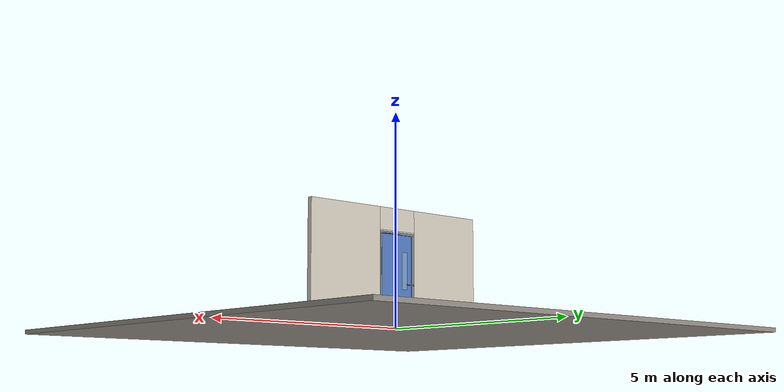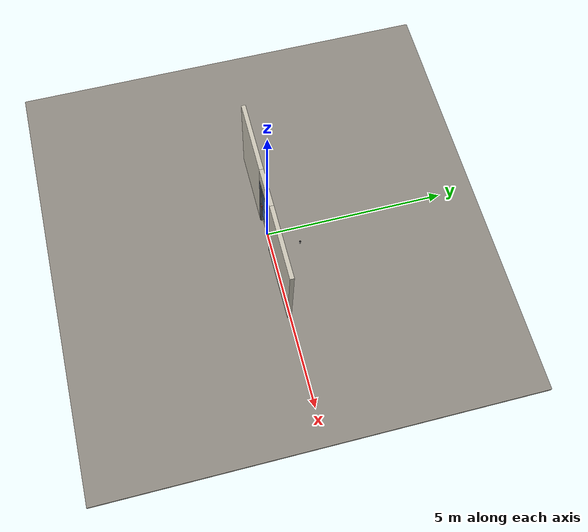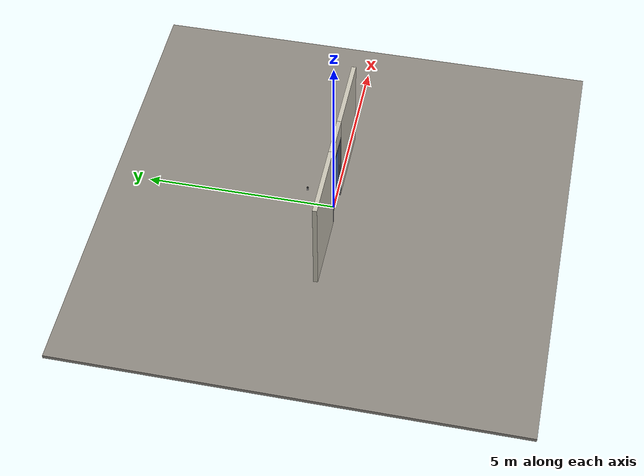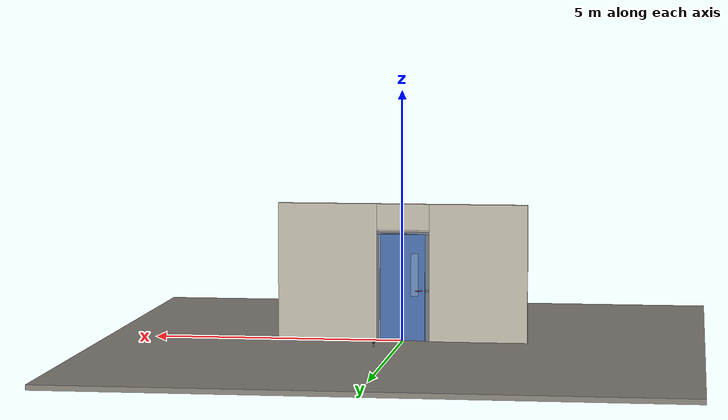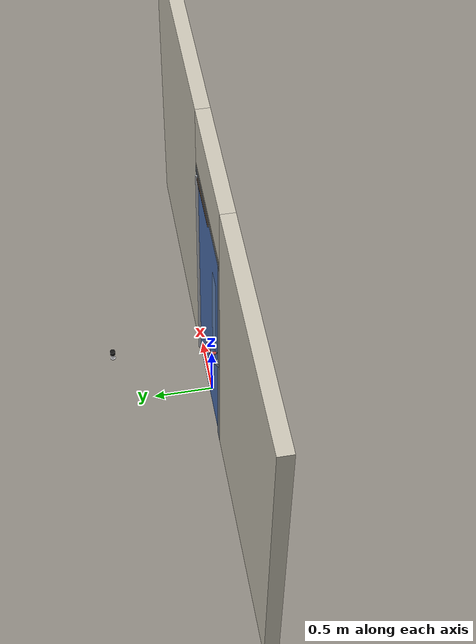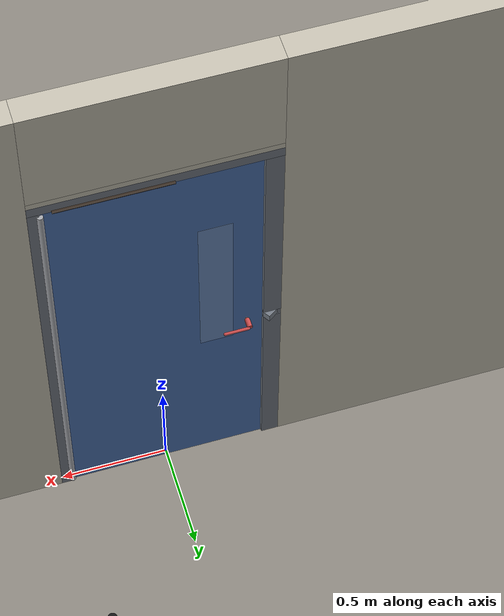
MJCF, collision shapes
<?xml version="1.0" ?>
<mujoco model="db0492_swing_single_full">
  <compiler angle="radian" meshdir="../../hardware" texturedir="../../textures" autolimits="true" inertiafromgeom="false"/>
  <option timestep="0.002" integrator="implicitfast" cone="elliptic" impratio="10" noslip_iterations="3">
    <flag multiccd="enable"/>
  </option>
  <size memory="16M"/>
  <default>
    <geom condim="4" solref="0.005 1" solimp="0.95 0.99 0.001"/>
    <joint solreflimit="0.005 1" solimplimit="0.95 0.99 0.001"/>
    <tendon solreflimit="0.005 1"/>
    <equality solref="0.002 1"/>
  </default>
  <visual>
    <headlight ambient="0.4 0.4 0.4" diffuse="0.7 0.7 0.7" specular="0.2 0.2 0.2"/>
    <quality shadowsize="4096"/>
    <map znear="0.01" zfar="60"/>
  </visual>
  <asset>
    <mesh name="lever_57205841c3" file="lever_57205841c3.obj"/>
    <material name="mat_floor" rgba="0.55 0.53 0.5 1" specular="0.2" shininess="0.15" reflectance="0"/>
    <material name="mat_wall" rgba="0.78 0.76 0.7 1" specular="0.2" shininess="0.1" reflectance="0"/>
    <material name="mat_leaf" rgba="0.3 0.45 0.7 1" specular="0.23" shininess="0.55" reflectance="0.02"/>
    <material name="mat_glass" rgba="0.85 0.92 0.95 0.25" specular="0.2" shininess="0.95" reflectance="0.1"/>
    <material name="mat_hinge" rgba="0.65 0.66 0.68 1" specular="0.74" shininess="0.5" reflectance="0.36"/>
    <material name="mat_op_black_matte_metal" rgba="0.05 0.05 0.05 1" specular="0.38" shininess="0.3" reflectance="0.12"/>
    <material name="mat_trim" rgba="0.85 0.66 0.3 1" specular="0.8" shininess="0.75" reflectance="0.4"/>
    <material name="mat_bolt" rgba="0.85 0.66 0.3 1" specular="0.8" shininess="0.75" reflectance="0.4"/>
    <material name="mat_frame" rgba="0.45 0.48 0.52 1" specular="0.32" shininess="0.6" reflectance="0.08"/>
    <material name="mat_seal" rgba="0.1 0.1 0.1 1" specular="0.2" shininess="0.1" reflectance="0"/>
    <material name="mat_closer" rgba="0.22 0.17 0.13 1" specular="0.8" shininess="0.6" reflectance="0.4"/>
    <material name="mat_kick" rgba="0.75 0.76 0.77 1" specular="0.8" shininess="0.65" reflectance="0.4"/>
    <material name="mat_bumper_stop" rgba="0.08 0.08 0.08 1" specular="0.2" shininess="0.1" reflectance="0"/>
    <material name="mat_stop_base" rgba="0.9 0.9 0.92 1" specular="0.8" shininess="0.9" reflectance="0.4"/>
    <texture name="skybox" type="skybox" builtin="gradient" rgb1="0.6 0.7 0.85" rgb2="0.9 0.92 0.95" width="256" height="256"/>
  </asset>
  <worldbody>
    <light name="sun" pos="1.5 -2.5 4" dir="-0.3 0.5 -0.8" directional="true" diffuse="0.8 0.8 0.8" specular="0.3 0.3 0.3" castshadow="true"/>
    <light name="fill" pos="-1.5 2.5 3" dir="0.3 -0.5 -0.7" directional="true" diffuse="0.35 0.35 0.4" castshadow="false"/>
    <camera name="robot_view" pos="0 -2.666313 1.812087" xyaxes="1 0 0 0 0.26963 0.962964" fovy="52"/>
    <camera name="far_view" pos="0 2.609312 1.812087" xyaxes="-1 0 0 0 -0.26963 0.962964" fovy="52"/>
    <camera name="iso" pos="-2.004737 -2.244263 2.234138" xyaxes="0.741536 -0.670913 0 0.242917 0.268487 0.932151" fovy="46"/>
    <camera name="detail_handle" pos="-0.1105 -0.877 1.296" xyaxes="0.97561 0.219512 0 -0.070934 0.315262 0.94635" fovy="38"/>
    <geom name="floor" type="box" size="6 6 0.05" pos="0 0 -0.05" material="mat_floor" group="0" contype="1" conaffinity="1" friction="0.8 0.005 0.0001" density="2400"/>
    <geom name="wall_left" type="box" size="0.97975 0.0575 1.3735" pos="-1.52025 -0.0285 1.3735" material="mat_wall" group="0" contype="1" conaffinity="1" friction="0.6 0.005 0.0001" density="800"/>
    <geom name="wall_right" type="box" size="0.99475 0.0575 1.3735" pos="1.50525 -0.0285 1.3735" material="mat_wall" group="0" contype="1" conaffinity="1" friction="0.6 0.005 0.0001" density="800"/>
    <geom name="wall_header" type="box" size="0.5255 0.0575 0.26" pos="-0.015 -0.0285 2.487" material="mat_wall" group="0" contype="1" conaffinity="1" friction="0.6 0.005 0.0001" density="800"/>
    <geom name="jamb_hinge" type="box" size="0.025 0.0575 1.0735" pos="0.4855 -0.0285 1.0735" material="mat_frame" group="0" contype="1" conaffinity="1" friction="0.6 0.005 0.0001" density="300"/>
    <geom name="strike_1016_wall_n" type="box" size="0.04 0.03825 0.0183" pos="-0.5005 -0.04775 1.016" material="mat_frame" group="0" contype="1" conaffinity="1" friction="0.6 0.005 0.0001" density="300"/>
    <geom name="strike_1016_wall_p" type="box" size="0.04 0.008 0.0183" pos="-0.5005 0.0175 1.016" material="mat_frame" group="0" contype="1" conaffinity="1" friction="0.6 0.005 0.0001" density="300"/>
    <geom name="strike_1016_ramp" type="box" size="0.04 0.018028 0.0183" pos="-0.503782 0.018312 1.016" quat="0.957092 0 0 0.289784" material="mat_frame" group="0" contype="1" conaffinity="1" friction="0.12 0.005 0.0001" density="300"/>
    <geom name="strike_1016_back" type="box" size="0.0285 0.0095 0.0183" pos="-0.512 0 1.016" material="mat_frame" group="0" contype="1" conaffinity="1" friction="0.6 0.005 0.0001" density="300"/>
    <geom name="jamb_strike_0" type="box" size="0.04 0.0575 0.49885" pos="-0.5005 -0.0285 0.49885" material="mat_frame" group="0" contype="1" conaffinity="1" friction="0.6 0.005 0.0001" density="300"/>
    <geom name="jamb_strike_1" type="box" size="0.04 0.0575 0.55635" pos="-0.5005 -0.0285 1.59065" material="mat_frame" group="0" contype="1" conaffinity="1" friction="0.6 0.005 0.0001" density="300"/>
    <geom name="jamb_head" type="box" size="0.5255 0.0575 0.025" pos="-0.015 -0.0285 2.172" material="mat_frame" group="0" contype="1" conaffinity="1" friction="0.6 0.005 0.0001" density="300"/>
    <geom name="head_stud" type="box" size="0.5255 0.0575 0.015" pos="-0.015 -0.0285 2.212" material="mat_wall" group="0" contype="1" conaffinity="1" friction="0.6 0.005 0.0001" density="500"/>
    <geom name="stop_hinge" type="box" size="0.0055 0.016 1.0735" pos="0.455 -0.0385 1.0735" material="mat_frame" group="0" contype="1" conaffinity="1" friction="0.6 0.005 0.0001" density="300"/>
    <geom name="stop_strike" type="box" size="0.0055 0.016 1.0735" pos="-0.455 -0.0385 1.0735" material="mat_frame" group="0" contype="1" conaffinity="1" friction="0.6 0.005 0.0001" density="300"/>
    <geom name="stop_head" type="box" size="0.4605 0.016 0.0055" pos="0 -0.0385 2.1415" material="mat_frame" group="0" contype="1" conaffinity="1" friction="0.6 0.005 0.0001" density="300"/>
    <geom name="seal_hinge" type="box" size="0.004 0.002 1.0735" pos="0.4575 -0.024 1.0735" material="mat_seal" group="1" contype="0" conaffinity="0" density="1100"/>
    <geom name="seal_strike" type="box" size="0.004 0.002 1.0735" pos="-0.4575 -0.024 1.0735" material="mat_seal" group="1" contype="0" conaffinity="0" density="1100"/>
    <geom name="seal_head" type="box" size="0.4405 0.002 0.008" pos="0 -0.024 2.135" material="mat_seal" group="1" contype="0" conaffinity="0" density="1100"/>
    <geom name="closer_concealed_slot" type="box" size="0.25 0.008 0.004" pos="0.1605 0.032 2.152" material="mat_closer" group="1" contype="0" conaffinity="0" density="2700"/>
    <geom name="door_stop_base" type="cylinder" size="0.022 0.003" pos="0.4735 0.8059 0.003" material="mat_stop_base" group="0" contype="1" conaffinity="1" friction="0.6 0.005 0.0001" density="7850"/>
    <geom name="door_stop_post" type="cylinder" size="0.012 0.0245" pos="0.4735 0.8059 0.0305" material="mat_stop_base" group="0" contype="1" conaffinity="1" friction="0.6 0.005 0.0001" density="7850"/>
    <geom name="door_stop_bumper" type="cylinder" size="0.022 0.02" pos="0.4735 0.8059 0.075" material="mat_bumper_stop" group="0" contype="1" conaffinity="1" friction="0.6 0.005 0.0001" density="1100"/>
    <site name="approach_point" pos="0 -1.5 0" quat="1 0 0 0" size="0.05" rgba="0.2 0.9 0.2 0.5" group="4"/>
    <site name="goal_point" pos="0 1.5 0" quat="1 0 0 0" size="0.05" rgba="0.2 0.9 0.2 0.5" group="4"/>
    <site name="door_plane_center" pos="0 0 1.0735" quat="1 0 0 0" size="0.02" rgba="0.2 0.9 0.2 0.5" group="4"/>
    <body name="leaf" pos="0.4605 0 0">
      <inertial pos="-0.429996 0.00069 1.025929" mass="50.223396" quat="0.499129 0.503174 -0.495354 0.502305" diaginertia="3.90240028 20.248075611 24.128854514"/>
      <joint name="leaf_hinge" type="hinge" axis="0 0 -1" pos="-0.003 0.029 0" limited="true" range="0 1.570796" solreflimit="0.02 1" damping="10.268966" frictionloss="1.418375" stiffness="13.057072" springref="-1.488848" armature="0.02"/>
      <geom name="leaf_slab" type="box" size="0.457 0.022 1.067" pos="-0.46 0 1.076" material="mat_leaf" group="0" contype="1" conaffinity="1" friction="0.4 0.005 0.0001" density="1"/>
      <geom name="leaf_glass_0" type="box" size="0.075 0.0228 0.4268" pos="-0.71146 0 1.33208" material="mat_glass" group="1" contype="0" conaffinity="0" density="1"/>
      <geom name="hinge_continuous" type="cylinder" size="0.0136 1.057" pos="-0.003 0.029 1.076" material="mat_hinge" group="1" contype="0" conaffinity="0" density="2700"/>
      <geom name="leaf_latch_bolt_faceplate" type="box" size="0.0006 0.014 0.0283" pos="-0.9164 0 1.016" material="mat_bolt" group="1" contype="0" conaffinity="0" density="8500"/>
      <geom name="kick_plate_n" type="box" size="0.427 0.0008 0.125" pos="-0.46 -0.0228 0.144" material="mat_kick" group="2" contype="0" conaffinity="0" density="7900"/>
      <site name="leaf_edge_mid" pos="-0.917 0 1.067" quat="1 0 0 0" size="0.02" rgba="0.2 0.9 0.2 0.5" group="4"/>
      <body name="leaf_handle" pos="-0.847 0 1.016">
        <inertial pos="0.018425 0 0" mass="0.806444" quat="0 0.707107 0.707107 0" diaginertia="0.001006485 0.002593405 0.00349528"/>
        <joint name="leaf_handle_hinge" type="hinge" axis="0 1 0" limited="true" range="0 0.87" damping="0.212417" frictionloss="0.042" stiffness="1" springref="-0.35" armature="0.01"/>
        <geom name="leaf_handle_spindle" type="cylinder" size="0.006 0.03" pos="0 0 0" quat="0.707107 -0.707107 0 0" material="mat_op_black_matte_metal" group="1" contype="0" conaffinity="0" density="7850"/>
        <geom name="leaf_handle_lever_n" type="mesh" mesh="lever_57205841c3" pos="0 -0.022 0" quat="0 0 -0.707107 0.707107" material="mat_op_black_matte_metal" group="1" contype="0" conaffinity="0" density="3000"/>
        <geom name="leaf_handle_lever_col_n" type="capsule" size="0.007 0.053" pos="0.06 -0.077 0" quat="0.707107 0 0.707107 0" material="mat_op_black_matte_metal" group="3" contype="1" conaffinity="1" rgba="0.8 0.3 0.3 0.25" friction="0.7 0.01 0.0001" density="3000"/>
        <geom name="leaf_handle_hub_col_n" type="cylinder" size="0.012 0.022" pos="0 -0.052 0" quat="0.707107 -0.707107 0 0" material="mat_op_black_matte_metal" group="3" contype="1" conaffinity="1" rgba="0.8 0.3 0.3 0.25" friction="0.6 0.005 0.0001" density="3000"/>
        <geom name="leaf_handle_lever_p" type="mesh" mesh="lever_57205841c3" pos="0 0.022 0" quat="0 0 0.707107 0.707107" material="mat_op_black_matte_metal" group="1" contype="0" conaffinity="0" density="3000"/>
        <geom name="leaf_handle_lever_col_p" type="capsule" size="0.007 0.053" pos="0.06 0.077 0" quat="0.707107 0 0.707107 0" material="mat_op_black_matte_metal" group="3" contype="1" conaffinity="1" rgba="0.8 0.3 0.3 0.25" friction="0.7 0.01 0.0001" density="3000"/>
        <geom name="leaf_handle_hub_col_p" type="cylinder" size="0.012 0.022" pos="0 0.052 0" quat="0.707107 -0.707107 0 0" material="mat_op_black_matte_metal" group="3" contype="1" conaffinity="1" rgba="0.8 0.3 0.3 0.25" friction="0.6 0.005 0.0001" density="3000"/>
        <site name="leaf_handle_grip_n" pos="0.096 -0.077 0" quat="1 0 0 0" size="0.012" rgba="0.2 0.9 0.2 0.5" group="4"/>
        <site name="leaf_handle_grip_p" pos="0.096 0.077 0" quat="1 0 0 0" size="0.012" rgba="0.2 0.9 0.2 0.5" group="4"/>
      </body>
      <body name="leaf_latch_bolt" pos="-0.917 0 1.016">
        <inertial pos="0.0055 0 0" mass="0.074627" quat="0.92388 0.382683 0 0" diaginertia="0.000002271 0.000013255 0.000013255"/>
        <joint name="leaf_latch_bolt_slide" type="slide" axis="1 0 0" limited="true" range="0 0.019" damping="2" frictionloss="0.3" stiffness="600" springref="-0.01" armature="0.1"/>
        <geom name="leaf_latch_bolt_capsule" type="capsule" size="0.008 0.0165" pos="0.0055 0 0" quat="0.707107 0 -0.707107 0" material="mat_bolt" group="0" contype="1" conaffinity="1" friction="0.2 0.005 0.0001" density="8500"/>
      </body>
    </body>
  </worldbody>
  <tendon>
    <fixed name="leaf_latch_bolt_coupling" limited="true" range="0 10">
      <joint joint="leaf_latch_bolt_slide" coef="1"/>
      <joint joint="leaf_handle_hinge" coef="-0.023457"/>
    </fixed>
  </tendon>
  <sensor>
    <jointpos name="leaf_hinge_pos" joint="leaf_hinge"/>
    <jointvel name="leaf_hinge_vel" joint="leaf_hinge"/>
    <jointpos name="leaf_handle_hinge_pos" joint="leaf_handle_hinge"/>
    <jointvel name="leaf_handle_hinge_vel" joint="leaf_handle_hinge"/>
    <jointpos name="leaf_latch_bolt_slide_pos" joint="leaf_latch_bolt_slide"/>
    <jointvel name="leaf_latch_bolt_slide_vel" joint="leaf_latch_bolt_slide"/>
  </sensor>
</mujoco>
